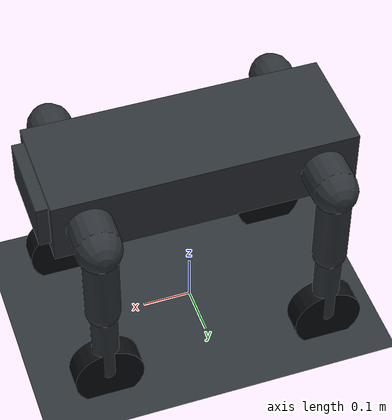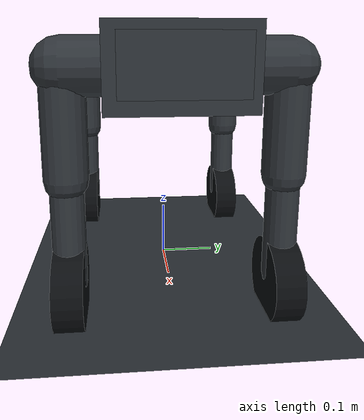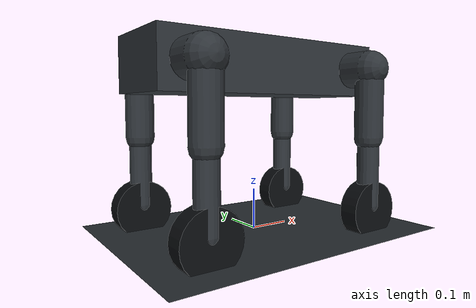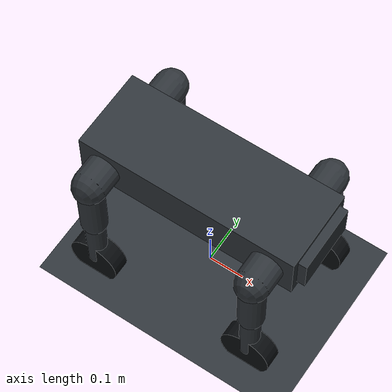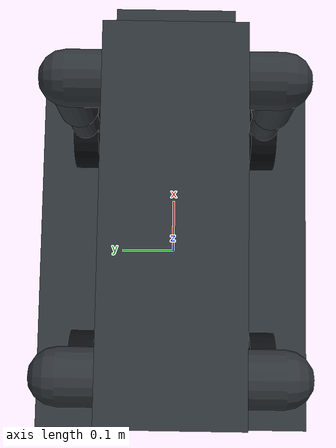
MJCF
<mujoco model="unitree_go2w_simplified">
  <compiler angle="radian" autolimits="true"/>
  <option timestep="0.002" gravity="0 0 -9.81" integrator="implicitfast" iterations="50"/>

  <default>
    <joint damping="0.8" armature="0.02" frictionloss="0.02"/>
    <geom condim="4" friction="0.9 0.1 0.01" density="850" rgba="0.18 0.20 0.22 1"/>
    <position kp="65" kv="5" ctrllimited="true" forcelimited="true" ctrlrange="-3 3" forcerange="-40 40"/>
    <default class="hip"><joint type="hinge" axis="1 0 0" range="-0.8 0.8"/></default>
    <default class="thigh"><joint type="hinge" axis="0 1 0" range="-1.6 1.6"/></default>
    <default class="calf"><joint type="hinge" axis="0 1 0" range="-2.7 -0.25"/></default>
    <default class="wheel">
      <joint type="hinge" axis="0 1 0" limited="false" damping="0.05" armature="0.01"/>
      <geom type="cylinder" size="0.07 0.024" quat="0.707107 0.707107 0 0" density="650" friction="1.3 0.03 0.01" rgba="0.04 0.05 0.06 1"/>
      <velocity kv="3" ctrllimited="true" ctrlrange="-25 25" forcelimited="true" forcerange="-12 12"/>
    </default>
  </default>

  <visual>
    <headlight ambient="0.35 0.35 0.35" diffuse="0.8 0.8 0.8" specular="0.2 0.2 0.2"/>
    <rgba haze="0.12 0.18 0.22 1"/>
  </visual>

  <asset>
    <texture name="grid" type="2d" builtin="checker" rgb1="0.17 0.19 0.21" rgb2="0.09 0.11 0.12" width="512" height="512"/>
    <material name="floor" texture="grid" texrepeat="8 8" reflectance="0.1"/>
    <material name="shell" rgba="0.76 0.81 0.84 1"/>
    <material name="joint" rgba="0.08 0.10 0.11 1"/>
    <material name="accent" rgba="0.08 0.55 0.78 1"/>
  </asset>

  <worldbody>
    <light pos="0 -2 3" dir="0 0.5 -1" directional="true"/>
    <geom name="ground" type="plane" size="8 8 0.05" density="0" material="floor"/>

    <body name="base" pos="0 0 0.40">
      <freejoint/>
      <geom name="trunk" type="box" size="0.30 0.11 0.065" material="shell"/>
      <geom name="front_panel" type="box" pos="0.305 0 0.005" size="0.018 0.09 0.045" material="accent"/>
      <site name="imu" size="0.01" rgba="0 1 0 1"/>

      <body name="FL_hip" pos="0.23 0.11 0">
        <joint name="FL_hip_joint" class="hip"/>
        <geom type="capsule" fromto="0 0 0 0 0.06 0" size="0.045" material="joint"/>
        <body name="FL_thigh" pos="0 0.06 0">
          <joint name="FL_thigh_joint" class="thigh"/>
          <geom type="capsule" fromto="0 0 0 0 0 -0.17" size="0.035" material="shell"/>
          <body name="FL_calf" pos="0 0 -0.17">
            <joint name="FL_calf_joint" class="calf"/>
            <geom type="capsule" fromto="0 0 0 0 0 -0.17" size="0.027" material="joint"/>
            <body name="FL_wheel" pos="0 0 -0.18">
              <joint name="FL_wheel_joint" class="wheel"/><geom name="FL_wheel_geom" class="wheel"/>
            </body>
          </body>
        </body>
      </body>

      <body name="FR_hip" pos="0.23 -0.11 0">
        <joint name="FR_hip_joint" class="hip"/>
        <geom type="capsule" fromto="0 0 0 0 -0.06 0" size="0.045" material="joint"/>
        <body name="FR_thigh" pos="0 -0.06 0">
          <joint name="FR_thigh_joint" class="thigh"/>
          <geom type="capsule" fromto="0 0 0 0 0 -0.17" size="0.035" material="shell"/>
          <body name="FR_calf" pos="0 0 -0.17">
            <joint name="FR_calf_joint" class="calf"/>
            <geom type="capsule" fromto="0 0 0 0 0 -0.17" size="0.027" material="joint"/>
            <body name="FR_wheel" pos="0 0 -0.18">
              <joint name="FR_wheel_joint" class="wheel"/><geom name="FR_wheel_geom" class="wheel"/>
            </body>
          </body>
        </body>
      </body>

      <body name="RL_hip" pos="-0.23 0.11 0">
        <joint name="RL_hip_joint" class="hip"/>
        <geom type="capsule" fromto="0 0 0 0 0.06 0" size="0.045" material="joint"/>
        <body name="RL_thigh" pos="0 0.06 0">
          <joint name="RL_thigh_joint" class="thigh"/>
          <geom type="capsule" fromto="0 0 0 0 0 -0.17" size="0.035" material="shell"/>
          <body name="RL_calf" pos="0 0 -0.17">
            <joint name="RL_calf_joint" class="calf"/>
            <geom type="capsule" fromto="0 0 0 0 0 -0.17" size="0.027" material="joint"/>
            <body name="RL_wheel" pos="0 0 -0.18">
              <joint name="RL_wheel_joint" class="wheel"/><geom name="RL_wheel_geom" class="wheel"/>
            </body>
          </body>
        </body>
      </body>

      <body name="RR_hip" pos="-0.23 -0.11 0">
        <joint name="RR_hip_joint" class="hip"/>
        <geom type="capsule" fromto="0 0 0 0 -0.06 0" size="0.045" material="joint"/>
        <body name="RR_thigh" pos="0 -0.06 0">
          <joint name="RR_thigh_joint" class="thigh"/>
          <geom type="capsule" fromto="0 0 0 0 0 -0.17" size="0.035" material="shell"/>
          <body name="RR_calf" pos="0 0 -0.17">
            <joint name="RR_calf_joint" class="calf"/>
            <geom type="capsule" fromto="0 0 0 0 0 -0.17" size="0.027" material="joint"/>
            <body name="RR_wheel" pos="0 0 -0.18">
              <joint name="RR_wheel_joint" class="wheel"/><geom name="RR_wheel_geom" class="wheel"/>
            </body>
          </body>
        </body>
      </body>
    </body>
  </worldbody>

  <actuator>
    <position name="FL_hip" joint="FL_hip_joint"/><position name="FL_thigh" joint="FL_thigh_joint"/><position name="FL_calf" joint="FL_calf_joint"/>
    <position name="FR_hip" joint="FR_hip_joint"/><position name="FR_thigh" joint="FR_thigh_joint"/><position name="FR_calf" joint="FR_calf_joint"/>
    <position name="RL_hip" joint="RL_hip_joint"/><position name="RL_thigh" joint="RL_thigh_joint"/><position name="RL_calf" joint="RL_calf_joint"/>
    <position name="RR_hip" joint="RR_hip_joint"/><position name="RR_thigh" joint="RR_thigh_joint"/><position name="RR_calf" joint="RR_calf_joint"/>
    <velocity name="FL_wheel" joint="FL_wheel_joint" class="wheel"/>
    <velocity name="FR_wheel" joint="FR_wheel_joint" class="wheel"/>
    <velocity name="RL_wheel" joint="RL_wheel_joint" class="wheel"/>
    <velocity name="RR_wheel" joint="RR_wheel_joint" class="wheel"/>
  </actuator>

  <keyframe>
    <key name="drive" qpos="0 0 0.40 1 0 0 0 0.08 0.58 -1.12 0 -0.08 0.58 -1.12 0 0.08 0.58 -1.12 0 -0.08 0.58 -1.12 0" ctrl="0.08 0.58 -1.12 -0.08 0.58 -1.12 0.08 0.58 -1.12 -0.08 0.58 -1.12 0 0 0 0"/>
  </keyframe>
</mujoco>
